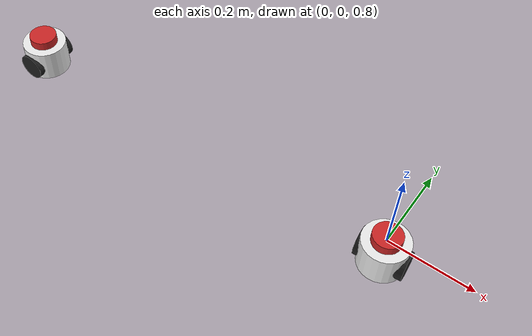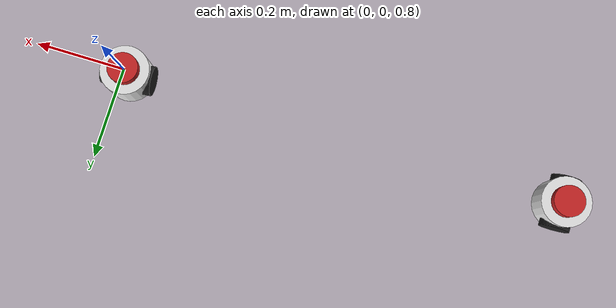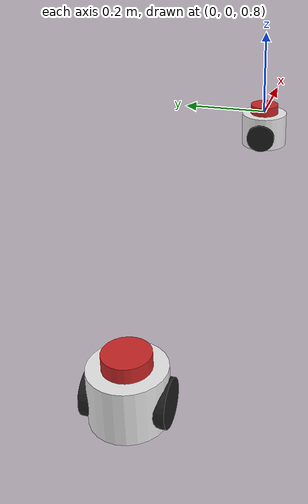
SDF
<sdf version="1.9">
 <world name="diff_drive">
  <physics name="default_physics" default="false" type="ode">
   <max_step_size>0.001</max_step_size>
   <real_time_factor>1</real_time_factor>
   <real_time_update_rate>1000</real_time_update_rate>
  </physics>
  <plugin name="ignition::gazebo::systems::Physics" filename="ignition-gazebo-physics-system"/>
  <plugin name="ignition::gazebo::systems::SceneBroadcaster" filename="ignition-gazebo-scene-broadcaster-system"/>
  <plugin name="gz::sim::systems::Sensors" filename="ignition-gazebo-sensors-system">
   <render_engine>ogre1</render_engine>
  </plugin>
  <gravity>0 0 -9.8</gravity>
  <magnetic_field>6e-06 2.3e-05 -4.2e-05</magnetic_field>
  <atmosphere type="adiabatic"/>
  <scene><ambient>0.4 0.4 0.4 1</ambient><background>0.7 0.7 0.7 1</background><shadows>true</shadows></scene>
  <include>
   <uri>file://src/robot_sim/gazebo/kris_robot</uri>
   <name>kris_robot</name>
   <pose>0 0 0.75 0 -0 3.14</pose>
  </include>
  <include>
   <uri>file://src/robot_sim/gazebo/kris_robot1</uri>
   <name>kris_robot1</name>
   <pose>-1.0 0 0.75 0 -0 3.14</pose>
  </include>
  <light name="sun" type="directional">
   <pose>0 0 10 0 -0 0</pose>
   <intensity>1</intensity>
   <direction>-0.5 0.1 -0.9</direction>
   <diffuse>0.8 0.8 0.8 1</diffuse>
   <specular>0.2 0.2 0.2 1</specular>
   <attenuation>
    <range>1000</range>
    <linear>0.01</linear>
    <constant>0.90000000000000002</constant>
    <quadratic>0.001</quadratic>
   </attenuation>
   <spot><inner_angle>0</inner_angle><outer_angle>0</outer_angle><falloff>0</falloff></spot>
  </light>
 </world>
</sdf>
